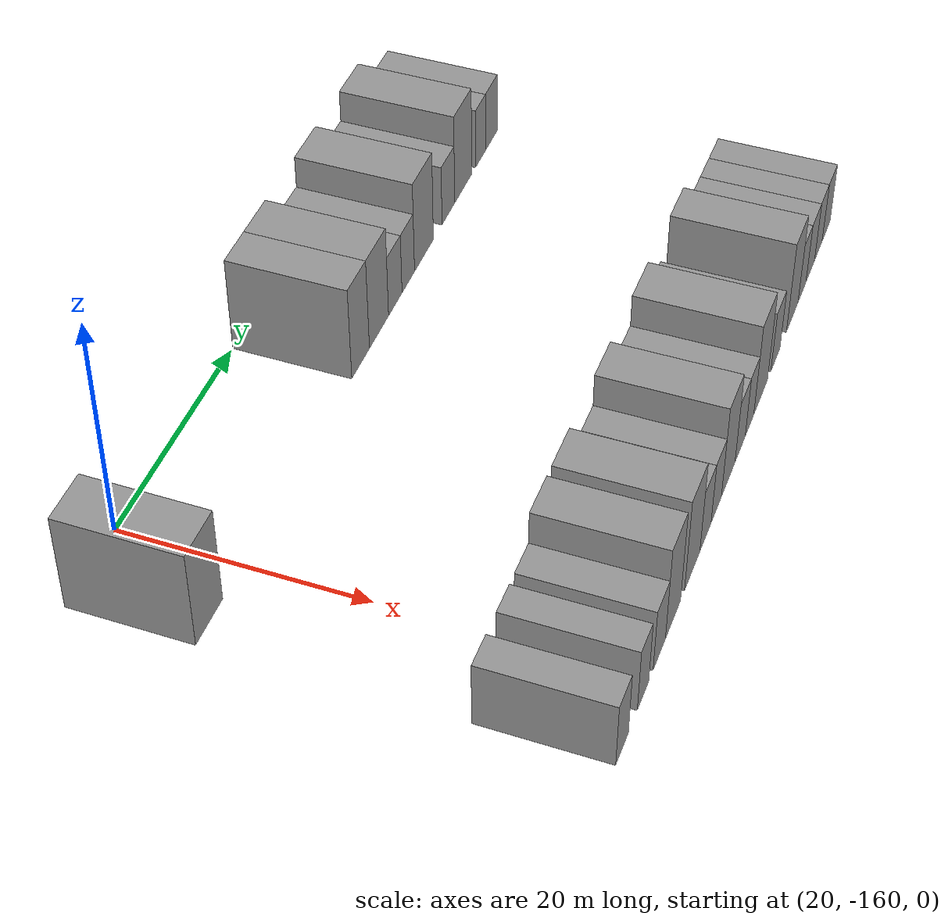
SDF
<sdf version="1.6">
 <world name="default">
  <model name="building_15">
   <static>1</static>
   <pose>25.0000 -165.5291 0 0.000000 0.000000 0.000000</pose>
   <link name="link">
    <pose>0 0 4.50 0 0 0</pose>
    <collision name="collision"><geometry><box><size>10.0000 4.4150 9.0000</size></box></geometry></collision>
    <visual name="visual">
     <cast_shadows>0</cast_shadows>
     <geometry><box><size>10.0000 4.4150 9.0000</size></box></geometry>
     <material>
      <script>
       <uri>model://grey_wall/materials/scripts</uri>
       <uri>model://grey_wall/materials/textures</uri>
       <name>vrc/grey_wall</name>
      </script>
     </material>
    </visual>
   </link>
  </model>
  <model name="building_16">
   <static>1</static>
   <pose>25.0000 -137.9047 0 0.000000 0.000000 0.000000</pose>
   <link name="link">
    <pose>0 0 4.50 0 0 0</pose>
    <collision name="collision"><geometry><box><size>10.0000 3.6113 9.0000</size></box></geometry></collision>
    <visual name="visual">
     <cast_shadows>0</cast_shadows>
     <geometry><box><size>10.0000 3.6113 9.0000</size></box></geometry>
     <material>
      <script>
       <uri>model://grey_wall/materials/scripts</uri>
       <uri>model://grey_wall/materials/textures</uri>
       <name>vrc/grey_wall</name>
      </script>
     </material>
    </visual>
   </link>
  </model>
  <model name="building_17">
   <static>1</static>
   <pose>25.0000 -134.0874 0 0.000000 0.000000 0.000000</pose>
   <link name="link">
    <pose>0 0 4.50 0 0 0</pose>
    <collision name="collision"><geometry><box><size>10.0000 4.0233 9.0000</size></box></geometry></collision>
    <visual name="visual">
     <cast_shadows>0</cast_shadows>
     <geometry><box><size>10.0000 4.0233 9.0000</size></box></geometry>
     <material>
      <script>
       <uri>model://grey_wall/materials/scripts</uri>
       <uri>model://grey_wall/materials/textures</uri>
       <name>vrc/grey_wall</name>
      </script>
     </material>
    </visual>
   </link>
  </model>
  <model name="building_18">
   <static>1</static>
   <pose>25.0000 -130.6236 0 0.000000 0.000000 0.000000</pose>
   <link name="link">
    <pose>0 0 3.00 0 0 0</pose>
    <collision name="collision"><geometry><box><size>10.0000 2.9042 6.0000</size></box></geometry></collision>
    <visual name="visual">
     <cast_shadows>0</cast_shadows>
     <geometry><box><size>10.0000 2.9042 6.0000</size></box></geometry>
     <material>
      <script>
       <uri>model://grey_wall/materials/scripts</uri>
       <uri>model://grey_wall/materials/textures</uri>
       <name>vrc/grey_wall</name>
      </script>
     </material>
    </visual>
   </link>
  </model>
  <model name="building_19">
   <static>1</static>
   <pose>25.0000 -127.7901 0 0.000000 0.000000 0.000000</pose>
   <link name="link">
    <pose>0 0 3.00 0 0 0</pose>
    <collision name="collision"><geometry><box><size>10.0000 2.7628 6.0000</size></box></geometry></collision>
    <visual name="visual">
     <cast_shadows>0</cast_shadows>
     <geometry><box><size>10.0000 2.7628 6.0000</size></box></geometry>
     <material>
      <script>
       <uri>model://grey_wall/materials/scripts</uri>
       <uri>model://grey_wall/materials/textures</uri>
       <name>vrc/grey_wall</name>
      </script>
     </material>
    </visual>
   </link>
  </model>
  <model name="building_20">
   <static>1</static>
   <pose>25.0000 -124.2791 0 0.000000 0.000000 0.000000</pose>
   <link name="link">
    <pose>0 0 4.50 0 0 0</pose>
    <collision name="collision"><geometry><box><size>10.0000 4.2591 9.0000</size></box></geometry></collision>
    <visual name="visual">
     <cast_shadows>0</cast_shadows>
     <geometry><box><size>10.0000 4.2591 9.0000</size></box></geometry>
     <material>
      <script>
       <uri>model://grey_wall/materials/scripts</uri>
       <uri>model://grey_wall/materials/textures</uri>
       <name>vrc/grey_wall</name>
      </script>
     </material>
    </visual>
   </link>
  </model>
  <model name="building_21">
   <static>1</static>
   <pose>25.0000 -118.6616 0 0.000000 0.000000 0.000000</pose>
   <link name="link">
    <pose>0 0 3.00 0 0 0</pose>
    <collision name="collision"><geometry><box><size>10.0000 2.9758 6.0000</size></box></geometry></collision>
    <visual name="visual">
     <cast_shadows>0</cast_shadows>
     <geometry><box><size>10.0000 2.9758 6.0000</size></box></geometry>
     <material>
      <script>
       <uri>model://grey_wall/materials/scripts</uri>
       <uri>model://grey_wall/materials/textures</uri>
       <name>vrc/grey_wall</name>
      </script>
     </material>
    </visual>
   </link>
  </model>
  <model name="building_22">
   <static>1</static>
   <pose>25.0000 -115.1251 0 0.000000 0.000000 0.000000</pose>
   <link name="link">
    <pose>0 0 4.50 0 0 0</pose>
    <collision name="collision"><geometry><box><size>10.0000 4.0973 9.0000</size></box></geometry></collision>
    <visual name="visual">
     <cast_shadows>0</cast_shadows>
     <geometry><box><size>10.0000 4.0973 9.0000</size></box></geometry>
     <material>
      <script>
       <uri>model://grey_wall/materials/scripts</uri>
       <uri>model://grey_wall/materials/textures</uri>
       <name>vrc/grey_wall</name>
      </script>
     </material>
    </visual>
   </link>
  </model>
  <model name="building_23">
   <static>1</static>
   <pose>25.0000 -110.8517 0 0.000000 0.000000 0.000000</pose>
   <link name="link">
    <pose>0 0 3.00 0 0 0</pose>
    <collision name="collision"><geometry><box><size>10.0000 2.4496 6.0000</size></box></geometry></collision>
    <visual name="visual">
     <cast_shadows>0</cast_shadows>
     <geometry><box><size>10.0000 2.4496 6.0000</size></box></geometry>
     <material>
      <script>
       <uri>model://grey_wall/materials/scripts</uri>
       <uri>model://grey_wall/materials/textures</uri>
       <name>vrc/grey_wall</name>
      </script>
     </material>
    </visual>
   </link>
  </model>
  <model name="building_24">
   <static>1</static>
   <pose>25.0000 -108.1369 0 0.000000 0.000000 0.000000</pose>
   <link name="link">
    <pose>0 0 3.00 0 0 0</pose>
    <collision name="collision"><geometry><box><size>10.0000 2.9800 6.0000</size></box></geometry></collision>
    <visual name="visual">
     <cast_shadows>0</cast_shadows>
     <geometry><box><size>10.0000 2.9800 6.0000</size></box></geometry>
     <material>
      <script>
       <uri>model://grey_wall/materials/scripts</uri>
       <uri>model://grey_wall/materials/textures</uri>
       <name>vrc/grey_wall</name>
      </script>
     </material>
    </visual>
   </link>
  </model>
  <model name="building_121">
   <static>1</static>
   <pose>55.0000 -166.1648 0 0.000000 0.000000 0.000000</pose>
   <link name="link">
    <pose>0 0 3.00 0 0 0</pose>
    <collision name="collision"><geometry><box><size>10.0000 2.7735 6.0000</size></box></geometry></collision>
    <visual name="visual">
     <cast_shadows>0</cast_shadows>
     <geometry><box><size>10.0000 2.7735 6.0000</size></box></geometry>
     <material>
      <script>
       <uri>model://grey_wall/materials/scripts</uri>
       <uri>model://grey_wall/materials/textures</uri>
       <name>vrc/grey_wall</name>
      </script>
     </material>
    </visual>
   </link>
  </model>
  <model name="building_122">
   <static>1</static>
   <pose>55.0000 -161.4734 0 0.000000 0.000000 0.000000</pose>
   <link name="link">
    <pose>0 0 3.00 0 0 0</pose>
    <collision name="collision"><geometry><box><size>10.0000 2.6092 6.0000</size></box></geometry></collision>
    <visual name="visual">
     <cast_shadows>0</cast_shadows>
     <geometry><box><size>10.0000 2.6092 6.0000</size></box></geometry>
     <material>
      <script>
       <uri>model://grey_wall/materials/scripts</uri>
       <uri>model://grey_wall/materials/textures</uri>
       <name>vrc/grey_wall</name>
      </script>
     </material>
    </visual>
   </link>
  </model>
  <model name="building_123">
   <static>1</static>
   <pose>55.0000 -157.7151 0 0.000000 0.000000 0.000000</pose>
   <link name="link">
    <pose>0 0 3.00 0 0 0</pose>
    <collision name="collision"><geometry><box><size>10.0000 2.9074 6.0000</size></box></geometry></collision>
    <visual name="visual">
     <cast_shadows>0</cast_shadows>
     <geometry><box><size>10.0000 2.9074 6.0000</size></box></geometry>
     <material>
      <script>
       <uri>model://grey_wall/materials/scripts</uri>
       <uri>model://grey_wall/materials/textures</uri>
       <name>vrc/grey_wall</name>
      </script>
     </material>
    </visual>
   </link>
  </model>
  <model name="building_124">
   <static>1</static>
   <pose>55.0000 -154.4368 0 0.000000 0.000000 0.000000</pose>
   <link name="link">
    <pose>0 0 4.50 0 0 0</pose>
    <collision name="collision"><geometry><box><size>10.0000 3.6492 9.0000</size></box></geometry></collision>
    <visual name="visual">
     <cast_shadows>0</cast_shadows>
     <geometry><box><size>10.0000 3.6492 9.0000</size></box></geometry>
     <material>
      <script>
       <uri>model://grey_wall/materials/scripts</uri>
       <uri>model://grey_wall/materials/textures</uri>
       <name>vrc/grey_wall</name>
      </script>
     </material>
    </visual>
   </link>
  </model>
  <model name="building_125">
   <static>1</static>
   <pose>55.0000 -149.6703 0 0.000000 0.000000 0.000000</pose>
   <link name="link">
    <pose>0 0 4.50 0 0 0</pose>
    <collision name="collision"><geometry><box><size>10.0000 3.8837 9.0000</size></box></geometry></collision>
    <visual name="visual">
     <cast_shadows>0</cast_shadows>
     <geometry><box><size>10.0000 3.8837 9.0000</size></box></geometry>
     <material>
      <script>
       <uri>model://grey_wall/materials/scripts</uri>
       <uri>model://grey_wall/materials/textures</uri>
       <name>vrc/grey_wall</name>
      </script>
     </material>
    </visual>
   </link>
  </model>
  <model name="building_126">
   <static>1</static>
   <pose>55.0000 -146.2731 0 0.000000 0.000000 0.000000</pose>
   <link name="link">
    <pose>0 0 3.00 0 0 0</pose>
    <collision name="collision"><geometry><box><size>10.0000 2.9107 6.0000</size></box></geometry></collision>
    <visual name="visual">
     <cast_shadows>0</cast_shadows>
     <geometry><box><size>10.0000 2.9107 6.0000</size></box></geometry>
     <material>
      <script>
       <uri>model://grey_wall/materials/scripts</uri>
       <uri>model://grey_wall/materials/textures</uri>
       <name>vrc/grey_wall</name>
      </script>
     </material>
    </visual>
   </link>
  </model>
  <model name="building_127">
   <static>1</static>
   <pose>55.0000 -143.4478 0 0.000000 0.000000 0.000000</pose>
   <link name="link">
    <pose>0 0 3.00 0 0 0</pose>
    <collision name="collision"><geometry><box><size>10.0000 2.7399 6.0000</size></box></geometry></collision>
    <visual name="visual">
     <cast_shadows>0</cast_shadows>
     <geometry><box><size>10.0000 2.7399 6.0000</size></box></geometry>
     <material>
      <script>
       <uri>model://grey_wall/materials/scripts</uri>
       <uri>model://grey_wall/materials/textures</uri>
       <name>vrc/grey_wall</name>
      </script>
     </material>
    </visual>
   </link>
  </model>
  <model name="building_128">
   <static>1</static>
   <pose>55.0000 -140.2117 0 0.000000 0.000000 0.000000</pose>
   <link name="link">
    <pose>0 0 4.50 0 0 0</pose>
    <collision name="collision"><geometry><box><size>10.0000 3.7324 9.0000</size></box></geometry></collision>
    <visual name="visual">
     <cast_shadows>0</cast_shadows>
     <geometry><box><size>10.0000 3.7324 9.0000</size></box></geometry>
     <material>
      <script>
       <uri>model://grey_wall/materials/scripts</uri>
       <uri>model://grey_wall/materials/textures</uri>
       <name>vrc/grey_wall</name>
      </script>
     </material>
    </visual>
   </link>
  </model>
  <model name="building_129">
   <static>1</static>
   <pose>55.0000 -136.9093 0 0.000000 0.000000 0.000000</pose>
   <link name="link">
    <pose>0 0 3.00 0 0 0</pose>
    <collision name="collision"><geometry><box><size>10.0000 2.8723 6.0000</size></box></geometry></collision>
    <visual name="visual">
     <cast_shadows>0</cast_shadows>
     <geometry><box><size>10.0000 2.8723 6.0000</size></box></geometry>
     <material>
      <script>
       <uri>model://grey_wall/materials/scripts</uri>
       <uri>model://grey_wall/materials/textures</uri>
       <name>vrc/grey_wall</name>
      </script>
     </material>
    </visual>
   </link>
  </model>
  <model name="building_130">
   <static>1</static>
   <pose>55.0000 -134.2499 0 0.000000 0.000000 0.000000</pose>
   <link name="link">
    <pose>0 0 3.00 0 0 0</pose>
    <collision name="collision"><geometry><box><size>10.0000 2.4464 6.0000</size></box></geometry></collision>
    <visual name="visual">
     <cast_shadows>0</cast_shadows>
     <geometry><box><size>10.0000 2.4464 6.0000</size></box></geometry>
     <material>
      <script>
       <uri>model://grey_wall/materials/scripts</uri>
       <uri>model://grey_wall/materials/textures</uri>
       <name>vrc/grey_wall</name>
      </script>
     </material>
    </visual>
   </link>
  </model>
  <model name="building_131">
   <static>1</static>
   <pose>55.0000 -131.0062 0 0.000000 0.000000 0.000000</pose>
   <link name="link">
    <pose>0 0 4.50 0 0 0</pose>
    <collision name="collision"><geometry><box><size>10.0000 4.0410 9.0000</size></box></geometry></collision>
    <visual name="visual">
     <cast_shadows>0</cast_shadows>
     <geometry><box><size>10.0000 4.0410 9.0000</size></box></geometry>
     <material>
      <script>
       <uri>model://grey_wall/materials/scripts</uri>
       <uri>model://grey_wall/materials/textures</uri>
       <name>vrc/grey_wall</name>
      </script>
     </material>
    </visual>
   </link>
  </model>
  <model name="building_132">
   <static>1</static>
   <pose>55.0000 -126.5923 0 0.000000 0.000000 0.000000</pose>
   <link name="link">
    <pose>0 0 3.00 0 0 0</pose>
    <collision name="collision"><geometry><box><size>10.0000 2.7866 6.0000</size></box></geometry></collision>
    <visual name="visual">
     <cast_shadows>0</cast_shadows>
     <geometry><box><size>10.0000 2.7866 6.0000</size></box></geometry>
     <material>
      <script>
       <uri>model://grey_wall/materials/scripts</uri>
       <uri>model://grey_wall/materials/textures</uri>
       <name>vrc/grey_wall</name>
      </script>
     </material>
    </visual>
   </link>
  </model>
  <model name="building_133">
   <static>1</static>
   <pose>55.0000 -121.3647 0 0.000000 0.000000 0.000000</pose>
   <link name="link">
    <pose>0 0 4.50 0 0 0</pose>
    <collision name="collision"><geometry><box><size>10.0000 3.6687 9.0000</size></box></geometry></collision>
    <visual name="visual">
     <cast_shadows>0</cast_shadows>
     <geometry><box><size>10.0000 3.6687 9.0000</size></box></geometry>
     <material>
      <script>
       <uri>model://grey_wall/materials/scripts</uri>
       <uri>model://grey_wall/materials/textures</uri>
       <name>vrc/grey_wall</name>
      </script>
     </material>
    </visual>
   </link>
  </model>
  <model name="building_134">
   <static>1</static>
   <pose>55.0000 -118.2428 0 0.000000 0.000000 0.000000</pose>
   <link name="link">
    <pose>0 0 3.00 0 0 0</pose>
    <collision name="collision"><geometry><box><size>10.0000 2.5751 6.0000</size></box></geometry></collision>
    <visual name="visual">
     <cast_shadows>0</cast_shadows>
     <geometry><box><size>10.0000 2.5751 6.0000</size></box></geometry>
     <material>
      <script>
       <uri>model://grey_wall/materials/scripts</uri>
       <uri>model://grey_wall/materials/textures</uri>
       <name>vrc/grey_wall</name>
      </script>
     </material>
    </visual>
   </link>
  </model>
  <model name="building_135">
   <static>1</static>
   <pose>55.0000 -115.5240 0 0.000000 0.000000 0.000000</pose>
   <link name="link">
    <pose>0 0 3.00 0 0 0</pose>
    <collision name="collision"><geometry><box><size>10.0000 2.8625 6.0000</size></box></geometry></collision>
    <visual name="visual">
     <cast_shadows>0</cast_shadows>
     <geometry><box><size>10.0000 2.8625 6.0000</size></box></geometry>
     <material>
      <script>
       <uri>model://grey_wall/materials/scripts</uri>
       <uri>model://grey_wall/materials/textures</uri>
       <name>vrc/grey_wall</name>
      </script>
     </material>
    </visual>
   </link>
  </model>
  <model name="building_136">
   <static>1</static>
   <pose>55.0000 -112.8126 0 0.000000 0.000000 0.000000</pose>
   <link name="link">
    <pose>0 0 3.00 0 0 0</pose>
    <collision name="collision"><geometry><box><size>10.0000 2.5603 6.0000</size></box></geometry></collision>
    <visual name="visual">
     <cast_shadows>0</cast_shadows>
     <geometry><box><size>10.0000 2.5603 6.0000</size></box></geometry>
     <material>
      <script>
       <uri>model://grey_wall/materials/scripts</uri>
       <uri>model://grey_wall/materials/textures</uri>
       <name>vrc/grey_wall</name>
      </script>
     </material>
    </visual>
   </link>
  </model>
  <model name="building_137">
   <static>1</static>
   <pose>55.0000 -110.1557 0 0.000000 0.000000 0.000000</pose>
   <link name="link">
    <pose>0 0 3.00 0 0 0</pose>
    <collision name="collision"><geometry><box><size>10.0000 2.7534 6.0000</size></box></geometry></collision>
    <visual name="visual">
     <cast_shadows>0</cast_shadows>
     <geometry><box><size>10.0000 2.7534 6.0000</size></box></geometry>
     <material>
      <script>
       <uri>model://grey_wall/materials/scripts</uri>
       <uri>model://grey_wall/materials/textures</uri>
       <name>vrc/grey_wall</name>
      </script>
     </material>
    </visual>
   </link>
  </model>
 </world>
</sdf>
